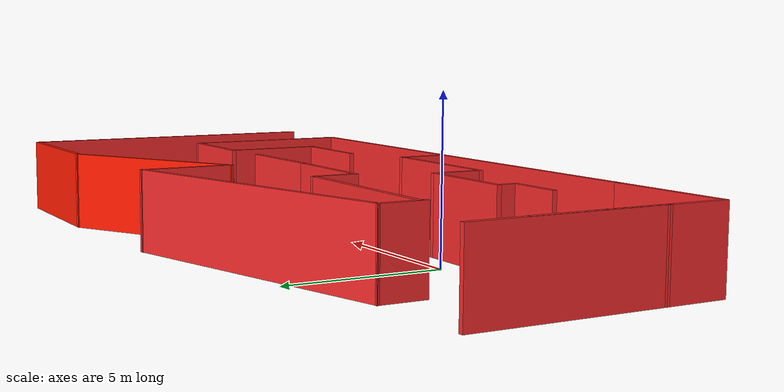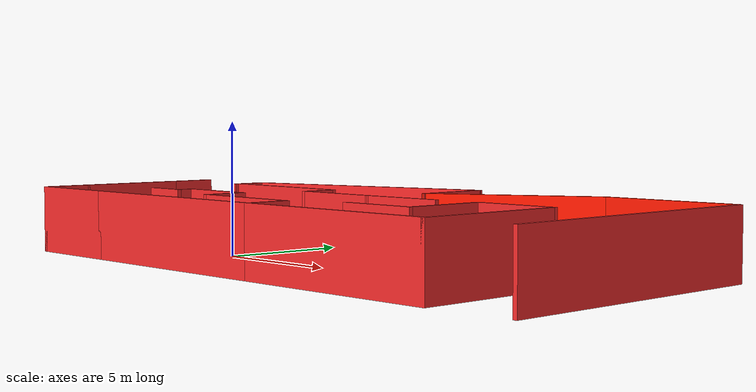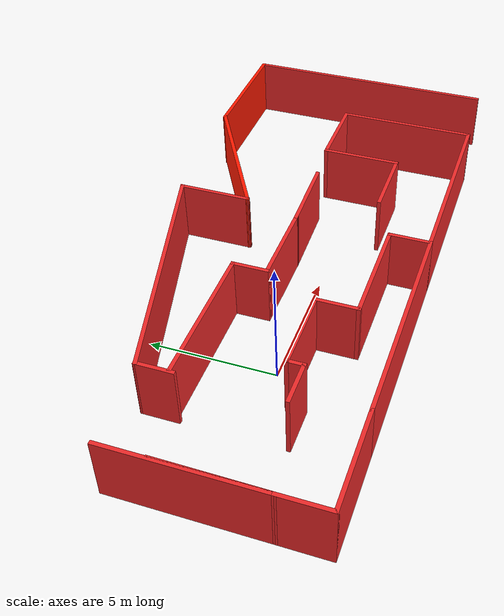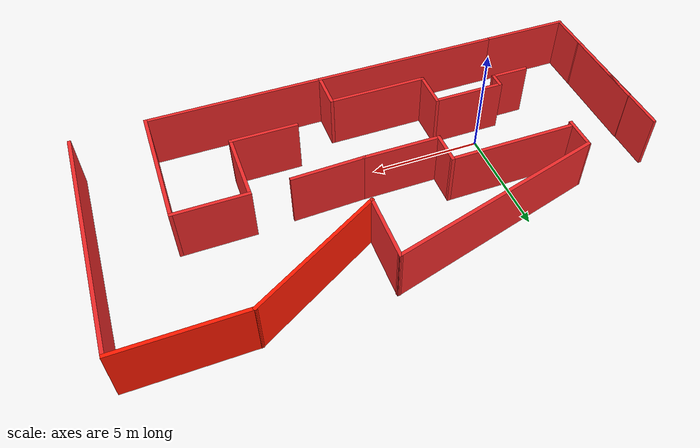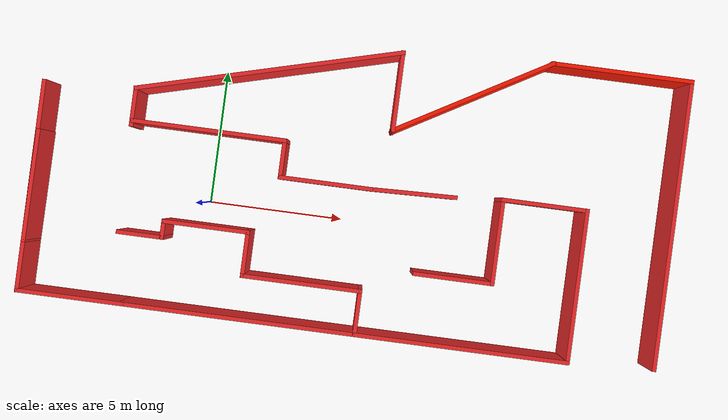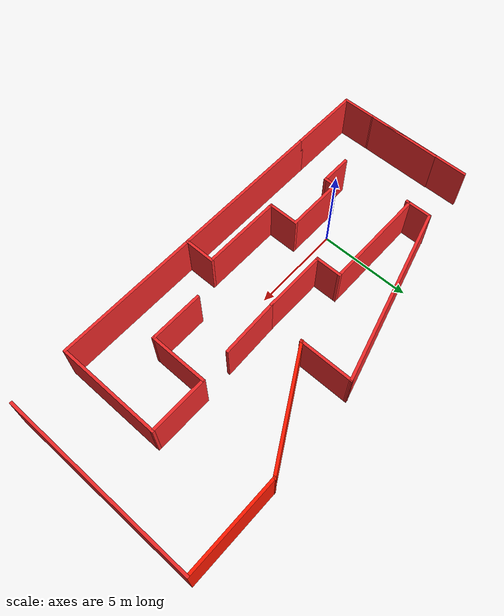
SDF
<?xml version='1.0'?>
<sdf version='1.6'>
  <model name='redbuilding'>
    <pose frame=''>5.35567 1.33108 0 0 -0 0</pose>
    <link name='Wall_0'>
      <collision name='Wall_0_Collision'>
        <geometry>
          <box>
            <size>2 0.15 2.5</size>
          </box>
        </geometry>
        <pose frame=''>0 0 1.25 0 -0 0</pose>
      </collision>
      <visual name='Wall_0_Visual'>
        <pose frame=''>0 0 1.25 0 -0 0</pose>
        <geometry>
          <box>
            <size>2 0.15 2.5</size>
          </box>
        </geometry>
        <material>
          <script>
            <uri>file://media/materials/scripts/gazebo.material</uri>
            <name>Gazebo/Grey</name>
          </script>
          <ambient>0.937255 0.160784 0.160784 1</ambient>
        </material>
        <meta>
          <layer>0</layer>
        </meta>
      </visual>
      <pose frame=''>-11.7357 -4.47608 0 0 -0 -1.5708</pose>
    </link>
    <link name='Wall_1'>
      <collision name='Wall_1_Collision'>
        <geometry>
          <box>
            <size>4 0.15 2.5</size>
          </box>
        </geometry>
        <pose frame=''>0 0 1.25 0 -0 0</pose>
      </collision>
      <visual name='Wall_1_Visual'>
        <pose frame=''>0 0 1.25 0 -0 0</pose>
        <geometry>
          <box>
            <size>4 0.15 2.5</size>
          </box>
        </geometry>
        <material>
          <script>
            <uri>file://media/materials/scripts/gazebo.material</uri>
            <name>Gazebo/Grey</name>
          </script>
          <ambient>0.937255 0.160784 0.160784 1</ambient>
        </material>
        <meta>
          <layer>0</layer>
        </meta>
      </visual>
      <pose frame=''>-9.81067 -5.40108 0 0 -0 0</pose>
    </link>
    <link name='Wall_10'>
      <collision name='Wall_10_Collision'>
        <geometry>
          <box>
            <size>5.75 0.15 2.5</size>
          </box>
        </geometry>
        <pose frame=''>0 0 1.25 0 -0 0</pose>
      </collision>
      <visual name='Wall_10_Visual'>
        <pose frame=''>0 0 1.25 0 -0 0</pose>
        <geometry>
          <box>
            <size>5.75 0.15 2.5</size>
          </box>
        </geometry>
        <material>
          <script>
            <uri>file://media/materials/scripts/gazebo.material</uri>
            <name>Gazebo/Grey</name>
          </script>
          <ambient>0.937255 0.160784 0.160784 1</ambient>
        </material>
        <meta>
          <layer>0</layer>
        </meta>
      </visual>
      <pose frame=''>-5.53566 1.29892 0 0 -0 0</pose>
    </link>
    <link name='Wall_11'>
      <collision name='Wall_11_Collision'>
        <geometry>
          <box>
            <size>1.5 0.15 2.5</size>
          </box>
        </geometry>
        <pose frame=''>0 0 1.25 0 -0 0</pose>
      </collision>
      <visual name='Wall_11_Visual'>
        <pose frame=''>0 0 1.25 0 -0 0</pose>
        <geometry>
          <box>
            <size>1.5 0.15 2.5</size>
          </box>
        </geometry>
        <material>
          <script>
            <uri>file://media/materials/scripts/gazebo.material</uri>
            <name>Gazebo/Grey</name>
          </script>
          <ambient>0.937255 0.160784 0.160784 1</ambient>
        </material>
        <meta>
          <layer>0</layer>
        </meta>
      </visual>
      <pose frame=''>-2.73567 0.623921 0 0 -0 -1.5708</pose>
    </link>
    <link name='Wall_12'>
      <collision name='Wall_12_Collision'>
        <geometry>
          <box>
            <size>3.5 0.15 2.5</size>
          </box>
        </geometry>
        <pose frame=''>0 0 1.25 0 -0 0</pose>
      </collision>
      <visual name='Wall_12_Visual'>
        <pose frame=''>0 0 1.25 0 -0 0</pose>
        <geometry>
          <box>
            <size>3.5 0.15 2.5</size>
          </box>
        </geometry>
        <material>
          <script>
            <uri>file://media/materials/scripts/gazebo.material</uri>
            <name>Gazebo/Grey</name>
          </script>
          <ambient>0.937255 0.160784 0.160784 1</ambient>
        </material>
        <meta>
          <layer>0</layer>
        </meta>
      </visual>
      <pose frame=''>-1.06066 -0.051079 0 0 -0 0</pose>
    </link>
    <link name='Wall_14'>
      <collision name='Wall_14_Collision'>
        <geometry>
          <box>
            <size>4.18145 0.15 2.5</size>
          </box>
        </geometry>
        <pose frame=''>0 0 1.25 0 -0 0</pose>
      </collision>
      <visual name='Wall_14_Visual'>
        <pose frame=''>0 0 1.25 0 -0 0</pose>
        <geometry>
          <box>
            <size>4.18145 0.15 2.5</size>
          </box>
        </geometry>
        <material>
          <script>
            <uri>file://media/materials/scripts/gazebo.material</uri>
            <name>Gazebo/Grey</name>
          </script>
          <ambient>0.937255 0.160784 0.160784 1</ambient>
        </material>
        <meta>
          <layer>0</layer>
        </meta>
      </visual>
      <pose frame=''>-11.7238 -1.53539 0 0 -0 -1.5767</pose>
    </link>
    <link name='Wall_15'>
      <collision name='Wall_15_Collision'>
        <geometry>
          <box>
            <size>6 0.15 2.5</size>
          </box>
        </geometry>
        <pose frame=''>0 0 1.25 0 -0 0</pose>
      </collision>
      <visual name='Wall_15_Visual'>
        <pose frame=''>0 0 1.25 0 -0 0</pose>
        <geometry>
          <box>
            <size>6 0.15 2.5</size>
          </box>
        </geometry>
        <material>
          <script>
            <uri>file://media/materials/scripts/gazebo.material</uri>
            <name>Gazebo/Grey</name>
          </script>
          <ambient>0.937255 0.160784 0.160784 1</ambient>
        </material>
        <meta>
          <layer>0</layer>
        </meta>
      </visual>
      <pose frame=''>-11.7357 -0.626079 0 0 -0 1.5708</pose>
    </link>
    <link name='Wall_17'>
      <collision name='Wall_17_Collision'>
        <geometry>
          <box>
            <size>1.5 0.15 2.5</size>
          </box>
        </geometry>
        <pose frame=''>0 0 1.25 0 -0 0</pose>
      </collision>
      <visual name='Wall_17_Visual'>
        <pose frame=''>0 0 1.25 0 -0 0</pose>
        <geometry>
          <box>
            <size>1.5 0.15 2.5</size>
          </box>
        </geometry>
        <material>
          <script>
            <uri>file://media/materials/scripts/gazebo.material</uri>
            <name>Gazebo/Grey</name>
          </script>
          <ambient>0.937255 0.160784 0.160784 1</ambient>
        </material>
        <meta>
          <layer>0</layer>
        </meta>
      </visual>
      <pose frame=''>-8.37753 1.82426 0 0 -0 -1.5708</pose>
    </link>
    <link name='Wall_19'>
      <collision name='Wall_19_Collision'>
        <geometry>
          <box>
            <size>8 0.15 2.5</size>
          </box>
        </geometry>
        <pose frame=''>0 0 1.25 0 -0 0</pose>
      </collision>
      <visual name='Wall_19_Visual'>
        <pose frame=''>0 0 1.25 0 -0 0</pose>
        <geometry>
          <box>
            <size>8 0.15 2.5</size>
          </box>
        </geometry>
        <material>
          <script>
            <uri>file://media/materials/scripts/gazebo.material</uri>
            <name>Gazebo/Grey</name>
          </script>
          <ambient>0.937255 0.160784 0.160784 1</ambient>
        </material>
        <meta>
          <layer>0</layer>
        </meta>
      </visual>
      <pose frame=''>4.63933 -5.40108 0 0 -0 0</pose>
    </link>
    <link name='Wall_2'>
      <collision name='Wall_2_Collision'>
        <geometry>
          <box>
            <size>8.75 0.15 2.5</size>
          </box>
        </geometry>
        <pose frame=''>0 0 1.25 0 -0 0</pose>
      </collision>
      <visual name='Wall_2_Visual'>
        <pose frame=''>0 0 1.25 0 -0 0</pose>
        <geometry>
          <box>
            <size>8.75 0.15 2.5</size>
          </box>
        </geometry>
        <material>
          <script>
            <uri>file://media/materials/scripts/gazebo.material</uri>
            <name>Gazebo/Grey</name>
          </script>
          <ambient>0.937255 0.160784 0.160784 1</ambient>
        </material>
        <meta>
          <layer>0</layer>
        </meta>
      </visual>
      <pose frame=''>-3.58567 -5.40108 0 0 -0 0</pose>
    </link>
    <link name='Wall_20'>
      <collision name='Wall_20_Collision'>
        <geometry>
          <box>
            <size>5.75 0.15 2.5</size>
          </box>
        </geometry>
        <pose frame=''>0 0 1.25 0 -0 0</pose>
      </collision>
      <visual name='Wall_20_Visual'>
        <pose frame=''>0 0 1.25 0 -0 0</pose>
        <geometry>
          <box>
            <size>5.75 0.15 2.5</size>
          </box>
        </geometry>
        <material>
          <script>
            <uri>file://media/materials/scripts/gazebo.material</uri>
            <name>Gazebo/Grey</name>
          </script>
          <ambient>0.937255 0.160784 0.160784 1</ambient>
        </material>
        <meta>
          <layer>0</layer>
        </meta>
      </visual>
      <pose frame=''>8.56433 -2.60108 0 0 -0 1.5708</pose>
    </link>
    <link name='Wall_21'>
      <collision name='Wall_21_Collision'>
        <geometry>
          <box>
            <size>3.25 0.15 2.5</size>
          </box>
        </geometry>
        <pose frame=''>0 0 1.25 0 -0 0</pose>
      </collision>
      <visual name='Wall_21_Visual'>
        <pose frame=''>0 0 1.25 0 -0 0</pose>
        <geometry>
          <box>
            <size>3.25 0.15 2.5</size>
          </box>
        </geometry>
        <material>
          <script>
            <uri>file://media/materials/scripts/gazebo.material</uri>
            <name>Gazebo/Grey</name>
          </script>
          <ambient>0.937255 0.160784 0.160784 1</ambient>
        </material>
        <meta>
          <layer>0</layer>
        </meta>
      </visual>
      <pose frame=''>7.01433 0.198921 0 0 -0 3.14159</pose>
    </link>
    <link name='Wall_22'>
      <collision name='Wall_22_Collision'>
        <geometry>
          <box>
            <size>3.25 0.15 2.5</size>
          </box>
        </geometry>
        <pose frame=''>0 0 1.25 0 -0 0</pose>
      </collision>
      <visual name='Wall_22_Visual'>
        <pose frame=''>0 0 1.25 0 -0 0</pose>
        <geometry>
          <box>
            <size>3.25 0.15 2.5</size>
          </box>
        </geometry>
        <material>
          <script>
            <uri>file://media/materials/scripts/gazebo.material</uri>
            <name>Gazebo/Grey</name>
          </script>
          <ambient>0.937255 0.160784 0.160784 1</ambient>
        </material>
        <meta>
          <layer>0</layer>
        </meta>
      </visual>
      <pose frame=''>5.46434 -1.35108 0 0 -0 -1.5708</pose>
    </link>
    <link name='Wall_23'>
      <collision name='Wall_23_Collision'>
        <geometry>
          <box>
            <size>3 0.15 2.5</size>
          </box>
        </geometry>
        <pose frame=''>0 0 1.25 0 -0 0</pose>
      </collision>
      <visual name='Wall_23_Visual'>
        <pose frame=''>0 0 1.25 0 -0 0</pose>
        <geometry>
          <box>
            <size>3 0.15 2.5</size>
          </box>
        </geometry>
        <material>
          <script>
            <uri>file://media/materials/scripts/gazebo.material</uri>
            <name>Gazebo/Grey</name>
          </script>
          <ambient>0.937255 0.160784 0.160784 1</ambient>
        </material>
        <meta>
          <layer>0</layer>
        </meta>
      </visual>
      <pose frame=''>4.03934 -2.90108 0 0 -0 3.14159</pose>
    </link>
    <link name='Wall_27'>
      <collision name='Wall_27_Collision'>
        <geometry>
          <box>
            <size>3.25161 0.15 2.5</size>
          </box>
        </geometry>
        <pose frame=''>0 0 1.25 0 -0 0</pose>
      </collision>
      <visual name='Wall_27_Visual'>
        <pose frame=''>0 0 1.25 0 -0 0</pose>
        <geometry>
          <box>
            <size>3.25161 0.15 2.5</size>
          </box>
        </geometry>
        <material>
          <script>
            <uri>file://media/materials/scripts/gazebo.material</uri>
            <name>Gazebo/Grey</name>
          </script>
          <ambient>0.937255 0.160784 0.160784 1</ambient>
        </material>
        <meta>
          <layer>0</layer>
        </meta>
      </visual>
      <pose frame=''>2.16433 -0.001079 0 0 -0 -3.10935</pose>
    </link>
    <link name='Wall_29'>
      <collision name='Wall_29_Collision'>
        <geometry>
          <box>
            <size>10 0.15 2.5</size>
          </box>
        </geometry>
        <pose frame=''>0 0 1.25 0 -0 0</pose>
      </collision>
      <visual name='Wall_29_Visual'>
        <pose frame=''>0 0 1.25 0 -0 0</pose>
        <geometry>
          <box>
            <size>10 0.15 2.5</size>
          </box>
        </geometry>
        <material>
          <script>
            <uri>file://media/materials/scripts/gazebo.material</uri>
            <name>Gazebo/Grey</name>
          </script>
          <ambient>0.937255 0.160784 0.160784 1</ambient>
        </material>
        <meta>
          <layer>0</layer>
        </meta>
      </visual>
      <pose frame=''>-3.62034 3.77394 0 0 -0 0.261799</pose>
    </link>
    <link name='Wall_3'>
      <collision name='Wall_3_Collision'>
        <geometry>
          <box>
            <size>1.75 0.15 2.5</size>
          </box>
        </geometry>
        <pose frame=''>0 0 1.25 0 -0 0</pose>
      </collision>
      <visual name='Wall_3_Visual'>
        <pose frame=''>0 0 1.25 0 -0 0</pose>
        <geometry>
          <box>
            <size>1.75 0.15 2.5</size>
          </box>
        </geometry>
        <material>
          <script>
            <uri>file://media/materials/scripts/gazebo.material</uri>
            <name>Gazebo/Grey</name>
          </script>
          <ambient>0.937255 0.160784 0.160784 1</ambient>
        </material>
        <meta>
          <layer>0</layer>
        </meta>
      </visual>
      <pose frame=''>0.714335 -4.60108 0 0 -0 1.5708</pose>
    </link>
    <link name='Wall_30'>
      <collision name='Wall_30_Collision'>
        <geometry>
          <box>
            <size>3 0.15 2.5</size>
          </box>
        </geometry>
        <pose frame=''>0 0 1.25 0 -0 0</pose>
      </collision>
      <visual name='Wall_30_Visual'>
        <pose frame=''>0 0 1.25 0 -0 0</pose>
        <geometry>
          <box>
            <size>3 0.15 2.5</size>
          </box>
        </geometry>
        <material>
          <script>
            <uri>file://media/materials/scripts/gazebo.material</uri>
            <name>Gazebo/Grey</name>
          </script>
          <ambient>0.937255 0.160784 0.160784 1</ambient>
        </material>
        <meta>
          <layer>0</layer>
        </meta>
      </visual>
      <pose frame=''>1.13684 3.62363 0 0 -0 -1.5708</pose>
    </link>
    <link name='Wall_31'>
      <collision name='Wall_31_Collision'>
        <geometry>
          <box>
            <size>6.5 0.15 2.5</size>
          </box>
        </geometry>
        <pose frame=''>0 0 1.25 0 -0 0</pose>
      </collision>
      <visual name='Wall_31_Visual'>
        <pose frame=''>0 0 1.25 0 -0 0</pose>
        <geometry>
          <box>
            <size>6.5 0.15 2.5</size>
          </box>
        </geometry>
        <material>
          <script>
            <uri>file://media/materials/scripts/gazebo.material</uri>
            <name>Gazebo/Grey</name>
          </script>
          <ambient>1 0.0980392 0 1</ambient>
        </material>
        <meta>
          <layer>0</layer>
        </meta>
      </visual>
      <pose frame=''>3.88647 3.78613 0 0 -0 0.523599</pose>
    </link>
    <link name='Wall_32'>
      <collision name='Wall_32_Collision'>
        <geometry>
          <box>
            <size>5.25 0.15 2.5</size>
          </box>
        </geometry>
        <pose frame=''>0 0 1.25 0 -0 0</pose>
      </collision>
      <visual name='Wall_32_Visual'>
        <pose frame=''>0 0 1.25 0 -0 0</pose>
        <geometry>
          <box>
            <size>5.25 0.15 2.5</size>
          </box>
        </geometry>
        <material>
          <script>
            <uri>file://media/materials/scripts/gazebo.material</uri>
            <name>Gazebo/Grey</name>
          </script>
          <ambient>1 0.0980392 0 1</ambient>
        </material>
        <meta>
          <layer>0</layer>
        </meta>
      </visual>
      <pose frame=''>9.1861 5.37363 0 0 -0 0</pose>
    </link>
    <link name='Wall_33'>
      <collision name='Wall_33_Collision'>
        <geometry>
          <box>
            <size>10.75 0.15 2.5</size>
          </box>
        </geometry>
        <pose frame=''>0 0 1.25 0 -0 0</pose>
      </collision>
      <visual name='Wall_33_Visual'>
        <pose frame=''>0 0 1.25 0 -0 0</pose>
        <geometry>
          <box>
            <size>10.75 0.15 2.5</size>
          </box>
        </geometry>
        <material>
          <script>
            <uri>file://media/materials/scripts/gazebo.material</uri>
            <name>Gazebo/Grey</name>
          </script>
          <ambient>0.937255 0.160784 0.160784 1</ambient>
        </material>
        <meta>
          <layer>0</layer>
        </meta>
      </visual>
      <pose frame=''>11.7361 0.073627 0 0 -0 -1.5708</pose>
    </link>
    <link name='Wall_4'>
      <collision name='Wall_4_Collision'>
        <geometry>
          <box>
            <size>4.5 0.15 2.5</size>
          </box>
        </geometry>
        <pose frame=''>0 0 1.25 0 -0 0</pose>
      </collision>
      <visual name='Wall_4_Visual'>
        <pose frame=''>0 0 1.25 0 -0 0</pose>
        <geometry>
          <box>
            <size>4.5 0.15 2.5</size>
          </box>
        </geometry>
        <material>
          <script>
            <uri>file://media/materials/scripts/gazebo.material</uri>
            <name>Gazebo/Grey</name>
          </script>
          <ambient>0.937255 0.160784 0.160784 1</ambient>
        </material>
        <meta>
          <layer>0</layer>
        </meta>
      </visual>
      <pose frame=''>-1.46067 -3.80108 0 0 -0 3.14159</pose>
    </link>
    <link name='Wall_5'>
      <collision name='Wall_5_Collision'>
        <geometry>
          <box>
            <size>1.75 0.15 2.5</size>
          </box>
        </geometry>
        <pose frame=''>0 0 1.25 0 -0 0</pose>
      </collision>
      <visual name='Wall_5_Visual'>
        <pose frame=''>0 0 1.25 0 -0 0</pose>
        <geometry>
          <box>
            <size>1.75 0.15 2.5</size>
          </box>
        </geometry>
        <material>
          <script>
            <uri>file://media/materials/scripts/gazebo.material</uri>
            <name>Gazebo/Grey</name>
          </script>
          <ambient>0.937255 0.160784 0.160784 1</ambient>
        </material>
        <meta>
          <layer>0</layer>
        </meta>
      </visual>
      <pose frame=''>-3.63566 -3.00108 0 0 -0 1.5708</pose>
    </link>
    <link name='Wall_6'>
      <collision name='Wall_6_Collision'>
        <geometry>
          <box>
            <size>3.25 0.15 2.5</size>
          </box>
        </geometry>
        <pose frame=''>0 0 1.25 0 -0 0</pose>
      </collision>
      <visual name='Wall_6_Visual'>
        <pose frame=''>0 0 1.25 0 -0 0</pose>
        <geometry>
          <box>
            <size>3.25 0.15 2.5</size>
          </box>
        </geometry>
        <material>
          <script>
            <uri>file://media/materials/scripts/gazebo.material</uri>
            <name>Gazebo/Grey</name>
          </script>
          <ambient>0.937255 0.160784 0.160784 1</ambient>
        </material>
        <meta>
          <layer>0</layer>
        </meta>
      </visual>
      <pose frame=''>-5.18567 -2.20108 0 0 -0 3.14159</pose>
    </link>
    <link name='Wall_7'>
      <collision name='Wall_7_Collision'>
        <geometry>
          <box>
            <size>0.75 0.15 2.5</size>
          </box>
        </geometry>
        <pose frame=''>0 0 1.25 0 -0 0</pose>
      </collision>
      <visual name='Wall_7_Visual'>
        <pose frame=''>0 0 1.25 0 -0 0</pose>
        <geometry>
          <box>
            <size>0.75 0.15 2.5</size>
          </box>
        </geometry>
        <material>
          <script>
            <uri>file://media/materials/scripts/gazebo.material</uri>
            <name>Gazebo/Grey</name>
          </script>
          <ambient>0.937255 0.160784 0.160784 1</ambient>
        </material>
        <meta>
          <layer>0</layer>
        </meta>
      </visual>
      <pose frame=''>-6.73567 -2.50108 0 0 -0 -1.5708</pose>
    </link>
    <link name='Wall_8'>
      <collision name='Wall_8_Collision'>
        <geometry>
          <box>
            <size>1.75 0.15 2.5</size>
          </box>
        </geometry>
        <pose frame=''>0 0 1.25 0 -0 0</pose>
      </collision>
      <visual name='Wall_8_Visual'>
        <pose frame=''>0 0 1.25 0 -0 0</pose>
        <geometry>
          <box>
            <size>1.75 0.15 2.5</size>
          </box>
        </geometry>
        <material>
          <script>
            <uri>file://media/materials/scripts/gazebo.material</uri>
            <name>Gazebo/Grey</name>
          </script>
          <ambient>0.937255 0.160784 0.160784 1</ambient>
        </material>
        <meta>
          <layer>0</layer>
        </meta>
      </visual>
      <pose frame=''>-7.53566 -2.80108 0 0 -0 3.14159</pose>
    </link>
    <static>1</static>
  </model>
</sdf>
